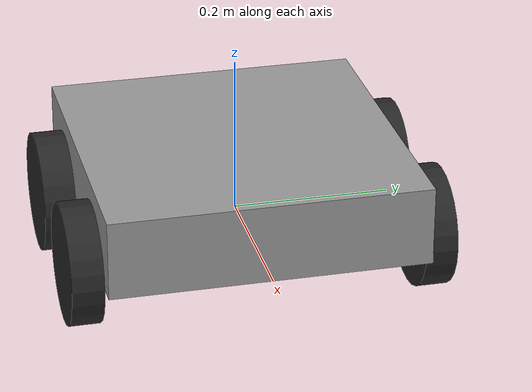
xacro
<?xml version="1.0"?>
<!-- 实车模型(纯运动学,无仿真标签):四麦轮 + YbImu + PAVO2 雷达。
     轮位仅用于可视化;运动学以 wheel_kinematics 参数为准
     (wheel_radius=0.0763, lx+ly=0.20, gear=19.2)。 -->
<robot xmlns:xacro="http://www.ros.org/wiki/xacro" name="myrobot_real">

  <xacro:arg name="laser_xyz" default="0 0 0.12"/>
  <xacro:arg name="imu_xyz" default="0 0 0.06"/>

  <link name="base_link">
    <visual>
      <geometry><box size="0.4 0.4 0.1"/></geometry>
      <origin xyz="0 0 0.05"/>
      <material name="grey"><color rgba="0.6 0.6 0.6 1"/></material>
    </visual>
    <collision>
      <geometry><box size="0.4 0.4 0.1"/></geometry>
      <origin xyz="0 0 0.05"/>
    </collision>
  </link>

  <xacro:macro name="wheel" params="name xyz">
    <link name="${name}">
      <visual>
        <geometry><cylinder radius="0.0763" length="0.04"/></geometry>
        <origin xyz="0 0 0" rpy="1.5708 0 0"/>
        <material name="dark"><color rgba="0.15 0.15 0.15 1"/></material>
      </visual>
    </link>
    <joint name="${name}_joint" type="continuous">
      <parent link="base_link"/>
      <child link="${name}"/>
      <origin xyz="${xyz}" rpy="0 0 0"/>
      <axis xyz="0 1 0"/>
    </joint>
  </xacro:macro>

  <wheel name="left_front_wheel"  xyz=" 0.1  0.22 0"/>
  <wheel name="right_front_wheel" xyz=" 0.1 -0.22 0"/>
  <wheel name="left_back_wheel"   xyz="-0.1  0.22 0"/>
  <wheel name="right_back_wheel"  xyz="-0.1 -0.22 0"/>

  <link name="imu_link"/>
  <joint name="imu_joint" type="fixed">
    <parent link="base_link"/>
    <child link="imu_link"/>
    <origin xyz="$(arg imu_xyz)" rpy="0 0 0"/>
  </joint>

  <link name="laser_link"/>
  <joint name="laser_joint" type="fixed">
    <parent link="base_link"/>
    <child link="laser_link"/>
    <origin xyz="$(arg laser_xyz)" rpy="0 0 0"/>
  </joint>

</robot>
